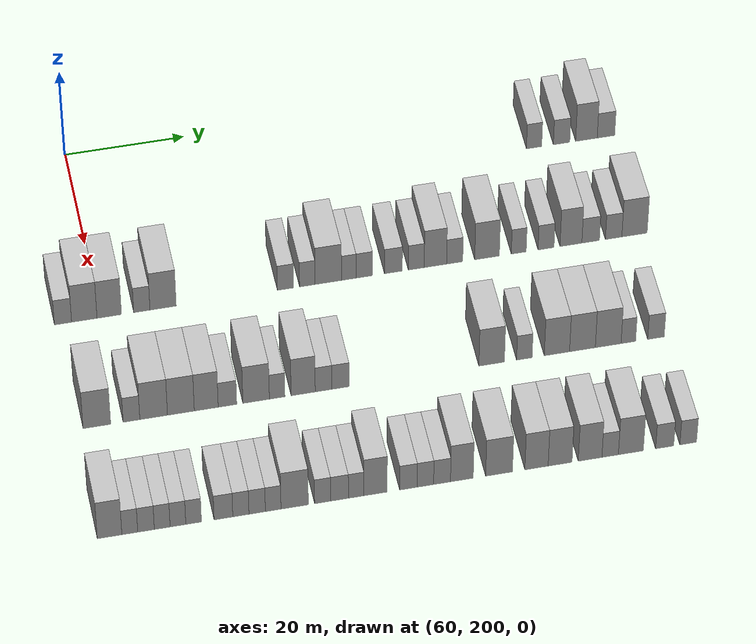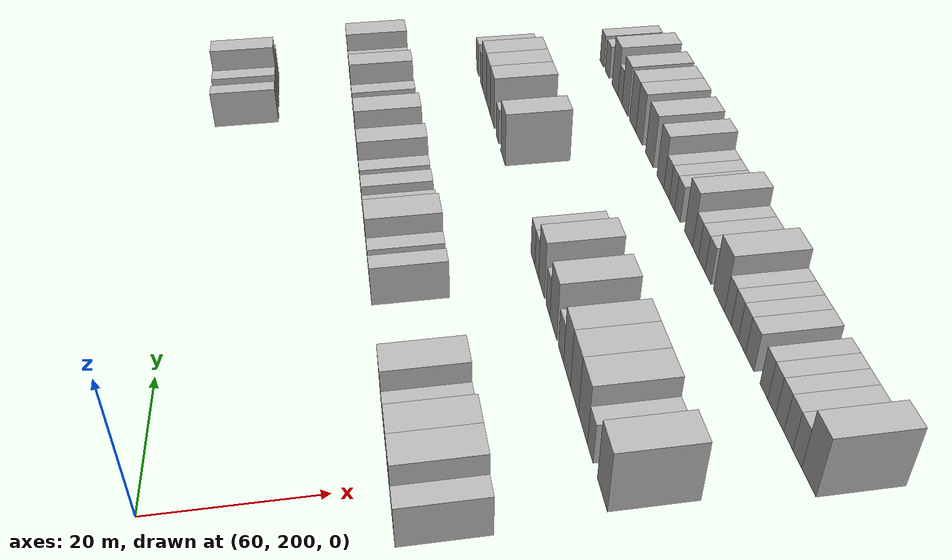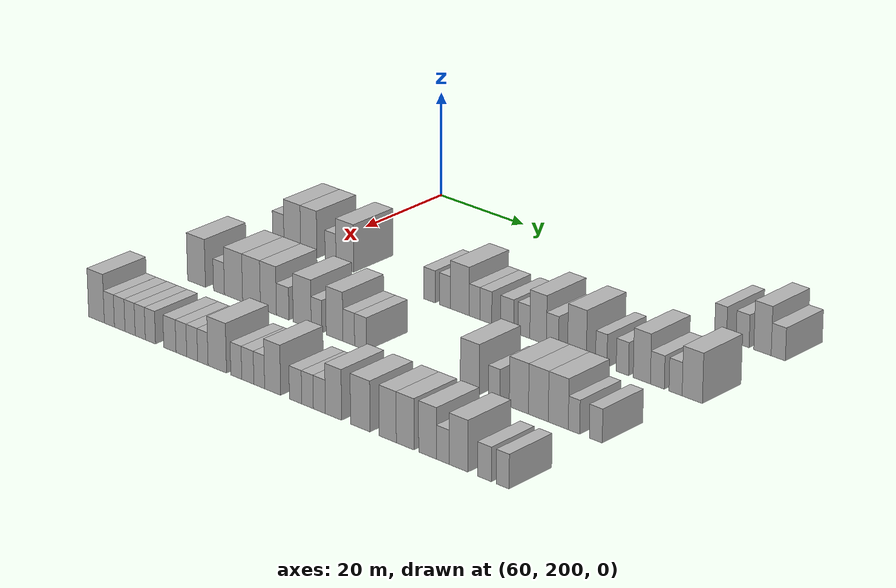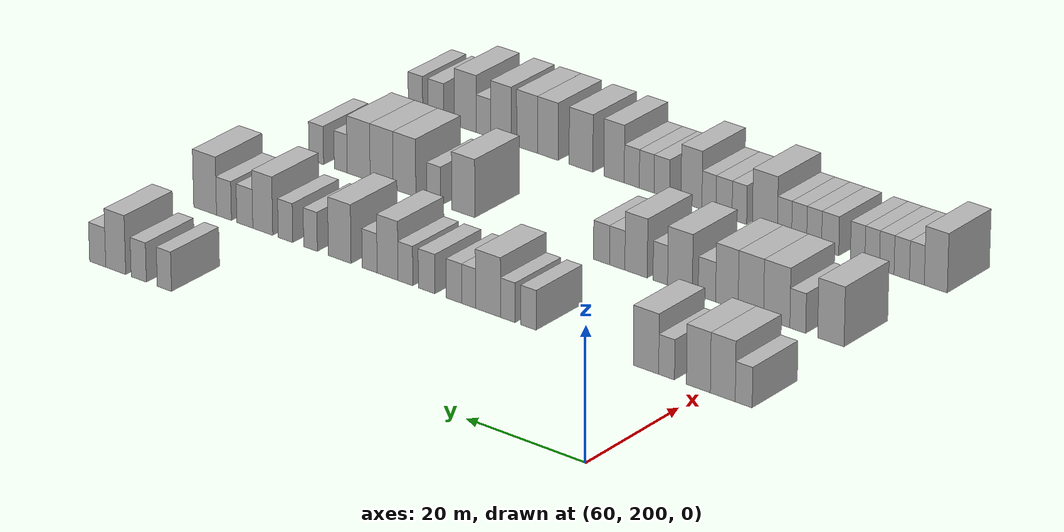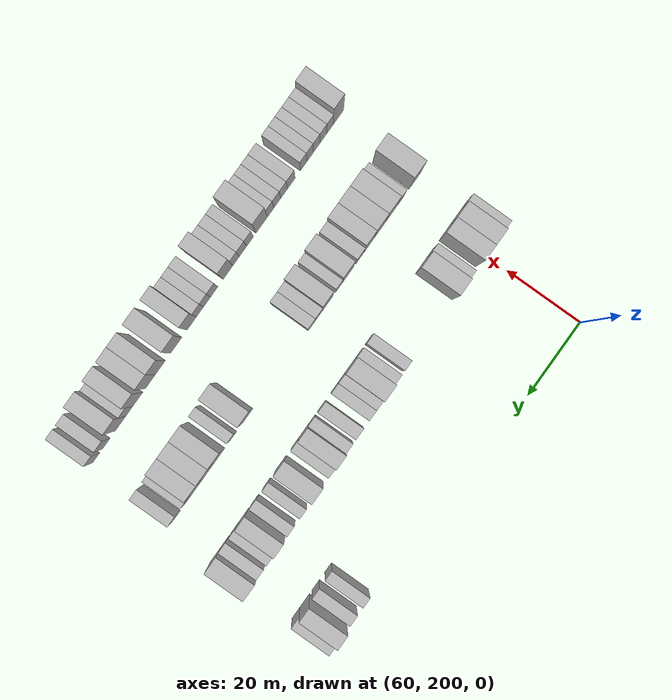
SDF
<sdf version="1.6">
 <world name="default">
  <model name="building_548">
   <static>1</static>
   <pose>69.0000 276.6926 0 0.000000 0.000000 0.000000</pose>
   <link name="link">
    <pose>0 0 3.00 0 0 0</pose>
    <collision name="collision"><geometry><box><size>10.0000 2.5990 6.0000</size></box></geometry></collision>
    <visual name="visual">
     <cast_shadows>0</cast_shadows>
     <geometry><box><size>10.0000 2.5990 6.0000</size></box></geometry>
     <material>
      <script>
       <uri>model://HANNAS_wall/materials/scripts</uri>
       <uri>model://HANNAS_wall/materials/textures</uri>
       <name>vrc/HANNAS_wall</name>
      </script>
     </material>
    </visual>
   </link>
  </model>
  <model name="building_549">
   <static>1</static>
   <pose>69.0000 281.3944 0 0.000000 0.000000 0.000000</pose>
   <link name="link">
    <pose>0 0 3.00 0 0 0</pose>
    <collision name="collision"><geometry><box><size>10.0000 2.8046 6.0000</size></box></geometry></collision>
    <visual name="visual">
     <cast_shadows>0</cast_shadows>
     <geometry><box><size>10.0000 2.8046 6.0000</size></box></geometry>
     <material>
      <script>
       <uri>model://HANNAS_wall/materials/scripts</uri>
       <uri>model://HANNAS_wall/materials/textures</uri>
       <name>vrc/HANNAS_wall</name>
      </script>
     </material>
    </visual>
   </link>
  </model>
  <model name="building_550">
   <static>1</static>
   <pose>69.0000 285.6413 0 0.000000 0.000000 0.000000</pose>
   <link name="link">
    <pose>0 0 4.50 0 0 0</pose>
    <collision name="collision"><geometry><box><size>10.0000 3.6891 9.0000</size></box></geometry></collision>
    <visual name="visual">
     <cast_shadows>0</cast_shadows>
     <geometry><box><size>10.0000 3.6891 9.0000</size></box></geometry>
     <material>
      <script>
       <uri>model://HANNAS_wall/materials/scripts</uri>
       <uri>model://HANNAS_wall/materials/textures</uri>
       <name>vrc/HANNAS_wall</name>
      </script>
     </material>
    </visual>
   </link>
  </model>
  <model name="building_551">
   <static>1</static>
   <pose>69.0000 288.9842 0 0.000000 0.000000 0.000000</pose>
   <link name="link">
    <pose>0 0 3.00 0 0 0</pose>
    <collision name="collision"><geometry><box><size>10.0000 2.9966 6.0000</size></box></geometry></collision>
    <visual name="visual">
     <cast_shadows>0</cast_shadows>
     <geometry><box><size>10.0000 2.9966 6.0000</size></box></geometry>
     <material>
      <script>
       <uri>model://HANNAS_wall/materials/scripts</uri>
       <uri>model://HANNAS_wall/materials/textures</uri>
       <name>vrc/HANNAS_wall</name>
      </script>
     </material>
    </visual>
   </link>
  </model>
  <model name="building_724">
   <static>1</static>
   <pose>91.0000 193.8318 0 0.000000 0.000000 0.000000</pose>
   <link name="link">
    <pose>0 0 3.00 0 0 0</pose>
    <collision name="collision"><geometry><box><size>10.0000 2.8111 6.0000</size></box></geometry></collision>
    <visual name="visual">
     <cast_shadows>0</cast_shadows>
     <geometry><box><size>10.0000 2.8111 6.0000</size></box></geometry>
     <material>
      <script>
       <uri>model://HANNAS_wall/materials/scripts</uri>
       <uri>model://HANNAS_wall/materials/textures</uri>
       <name>vrc/HANNAS_wall</name>
      </script>
     </material>
    </visual>
   </link>
  </model>
  <model name="building_725">
   <static>1</static>
   <pose>91.0000 197.3106 0 0.000000 0.000000 0.000000</pose>
   <link name="link">
    <pose>0 0 4.50 0 0 0</pose>
    <collision name="collision"><geometry><box><size>10.0000 4.1465 9.0000</size></box></geometry></collision>
    <visual name="visual">
     <cast_shadows>0</cast_shadows>
     <geometry><box><size>10.0000 4.1465 9.0000</size></box></geometry>
     <material>
      <script>
       <uri>model://HANNAS_wall/materials/scripts</uri>
       <uri>model://HANNAS_wall/materials/textures</uri>
       <name>vrc/HANNAS_wall</name>
      </script>
     </material>
    </visual>
   </link>
  </model>
  <model name="building_726">
   <static>1</static>
   <pose>91.0000 201.3864 0 0.000000 0.000000 0.000000</pose>
   <link name="link">
    <pose>0 0 4.50 0 0 0</pose>
    <collision name="collision"><geometry><box><size>10.0000 4.0050 9.0000</size></box></geometry></collision>
    <visual name="visual">
     <cast_shadows>0</cast_shadows>
     <geometry><box><size>10.0000 4.0050 9.0000</size></box></geometry>
     <material>
      <script>
       <uri>model://HANNAS_wall/materials/scripts</uri>
       <uri>model://HANNAS_wall/materials/textures</uri>
       <name>vrc/HANNAS_wall</name>
      </script>
     </material>
    </visual>
   </link>
  </model>
  <model name="building_727">
   <static>1</static>
   <pose>91.0000 206.7208 0 0.000000 0.000000 0.000000</pose>
   <link name="link">
    <pose>0 0 3.00 0 0 0</pose>
    <collision name="collision"><geometry><box><size>10.0000 2.6639 6.0000</size></box></geometry></collision>
    <visual name="visual">
     <cast_shadows>0</cast_shadows>
     <geometry><box><size>10.0000 2.6639 6.0000</size></box></geometry>
     <material>
      <script>
       <uri>model://HANNAS_wall/materials/scripts</uri>
       <uri>model://HANNAS_wall/materials/textures</uri>
       <name>vrc/HANNAS_wall</name>
      </script>
     </material>
    </visual>
   </link>
  </model>
  <model name="building_728">
   <static>1</static>
   <pose>91.0000 210.2033 0 0.000000 0.000000 0.000000</pose>
   <link name="link">
    <pose>0 0 4.50 0 0 0</pose>
    <collision name="collision"><geometry><box><size>10.0000 4.3011 9.0000</size></box></geometry></collision>
    <visual name="visual">
     <cast_shadows>0</cast_shadows>
     <geometry><box><size>10.0000 4.3011 9.0000</size></box></geometry>
     <material>
      <script>
       <uri>model://HANNAS_wall/materials/scripts</uri>
       <uri>model://HANNAS_wall/materials/textures</uri>
       <name>vrc/HANNAS_wall</name>
      </script>
     </material>
    </visual>
   </link>
  </model>
  <model name="building_729">
   <static>1</static>
   <pose>91.0000 230.3441 0 0.000000 0.000000 0.000000</pose>
   <link name="link">
    <pose>0 0 3.00 0 0 0</pose>
    <collision name="collision"><geometry><box><size>10.0000 2.6601 6.0000</size></box></geometry></collision>
    <visual name="visual">
     <cast_shadows>0</cast_shadows>
     <geometry><box><size>10.0000 2.6601 6.0000</size></box></geometry>
     <material>
      <script>
       <uri>model://HANNAS_wall/materials/scripts</uri>
       <uri>model://HANNAS_wall/materials/textures</uri>
       <name>vrc/HANNAS_wall</name>
      </script>
     </material>
    </visual>
   </link>
  </model>
  <model name="building_730">
   <static>1</static>
   <pose>91.0000 233.9556 0 0.000000 0.000000 0.000000</pose>
   <link name="link">
    <pose>0 0 3.00 0 0 0</pose>
    <collision name="collision"><geometry><box><size>10.0000 2.5629 6.0000</size></box></geometry></collision>
    <visual name="visual">
     <cast_shadows>0</cast_shadows>
     <geometry><box><size>10.0000 2.5629 6.0000</size></box></geometry>
     <material>
      <script>
       <uri>model://HANNAS_wall/materials/scripts</uri>
       <uri>model://HANNAS_wall/materials/textures</uri>
       <name>vrc/HANNAS_wall</name>
      </script>
     </material>
    </visual>
   </link>
  </model>
  <model name="building_731">
   <static>1</static>
   <pose>91.0000 237.4260 0 0.000000 0.000000 0.000000</pose>
   <link name="link">
    <pose>0 0 4.50 0 0 0</pose>
    <collision name="collision"><geometry><box><size>10.0000 4.3779 9.0000</size></box></geometry></collision>
    <visual name="visual">
     <cast_shadows>0</cast_shadows>
     <geometry><box><size>10.0000 4.3779 9.0000</size></box></geometry>
     <material>
      <script>
       <uri>model://HANNAS_wall/materials/scripts</uri>
       <uri>model://HANNAS_wall/materials/textures</uri>
       <name>vrc/HANNAS_wall</name>
      </script>
     </material>
    </visual>
   </link>
  </model>
  <model name="building_732">
   <static>1</static>
   <pose>91.0000 240.8261 0 0.000000 0.000000 0.000000</pose>
   <link name="link">
    <pose>0 0 3.00 0 0 0</pose>
    <collision name="collision"><geometry><box><size>10.0000 2.4224 6.0000</size></box></geometry></collision>
    <visual name="visual">
     <cast_shadows>0</cast_shadows>
     <geometry><box><size>10.0000 2.4224 6.0000</size></box></geometry>
     <material>
      <script>
       <uri>model://HANNAS_wall/materials/scripts</uri>
       <uri>model://HANNAS_wall/materials/textures</uri>
       <name>vrc/HANNAS_wall</name>
      </script>
     </material>
    </visual>
   </link>
  </model>
  <model name="building_733">
   <static>1</static>
   <pose>91.0000 243.3907 0 0.000000 0.000000 0.000000</pose>
   <link name="link">
    <pose>0 0 3.00 0 0 0</pose>
    <collision name="collision"><geometry><box><size>10.0000 2.7069 6.0000</size></box></geometry></collision>
    <visual name="visual">
     <cast_shadows>0</cast_shadows>
     <geometry><box><size>10.0000 2.7069 6.0000</size></box></geometry>
     <material>
      <script>
       <uri>model://HANNAS_wall/materials/scripts</uri>
       <uri>model://HANNAS_wall/materials/textures</uri>
       <name>vrc/HANNAS_wall</name>
      </script>
     </material>
    </visual>
   </link>
  </model>
  <model name="building_734">
   <static>1</static>
   <pose>91.0000 248.2250 0 0.000000 0.000000 0.000000</pose>
   <link name="link">
    <pose>0 0 3.00 0 0 0</pose>
    <collision name="collision"><geometry><box><size>10.0000 2.9616 6.0000</size></box></geometry></collision>
    <visual name="visual">
     <cast_shadows>0</cast_shadows>
     <geometry><box><size>10.0000 2.9616 6.0000</size></box></geometry>
     <material>
      <script>
       <uri>model://HANNAS_wall/materials/scripts</uri>
       <uri>model://HANNAS_wall/materials/textures</uri>
       <name>vrc/HANNAS_wall</name>
      </script>
     </material>
    </visual>
   </link>
  </model>
  <model name="building_735">
   <static>1</static>
   <pose>91.0000 252.0262 0 0.000000 0.000000 0.000000</pose>
   <link name="link">
    <pose>0 0 3.00 0 0 0</pose>
    <collision name="collision"><geometry><box><size>10.0000 2.6408 6.0000</size></box></geometry></collision>
    <visual name="visual">
     <cast_shadows>0</cast_shadows>
     <geometry><box><size>10.0000 2.6408 6.0000</size></box></geometry>
     <material>
      <script>
       <uri>model://HANNAS_wall/materials/scripts</uri>
       <uri>model://HANNAS_wall/materials/textures</uri>
       <name>vrc/HANNAS_wall</name>
      </script>
     </material>
    </visual>
   </link>
  </model>
  <model name="building_736">
   <static>1</static>
   <pose>91.0000 255.2136 0 0.000000 0.000000 0.000000</pose>
   <link name="link">
    <pose>0 0 4.50 0 0 0</pose>
    <collision name="collision"><geometry><box><size>10.0000 3.7342 9.0000</size></box></geometry></collision>
    <visual name="visual">
     <cast_shadows>0</cast_shadows>
     <geometry><box><size>10.0000 3.7342 9.0000</size></box></geometry>
     <material>
      <script>
       <uri>model://HANNAS_wall/materials/scripts</uri>
       <uri>model://HANNAS_wall/materials/textures</uri>
       <name>vrc/HANNAS_wall</name>
      </script>
     </material>
    </visual>
   </link>
  </model>
  <model name="building_737">
   <static>1</static>
   <pose>91.0000 258.4247 0 0.000000 0.000000 0.000000</pose>
   <link name="link">
    <pose>0 0 3.00 0 0 0</pose>
    <collision name="collision"><geometry><box><size>10.0000 2.6878 6.0000</size></box></geometry></collision>
    <visual name="visual">
     <cast_shadows>0</cast_shadows>
     <geometry><box><size>10.0000 2.6878 6.0000</size></box></geometry>
     <material>
      <script>
       <uri>model://HANNAS_wall/materials/scripts</uri>
       <uri>model://HANNAS_wall/materials/textures</uri>
       <name>vrc/HANNAS_wall</name>
      </script>
     </material>
    </visual>
   </link>
  </model>
  <model name="building_738">
   <static>1</static>
   <pose>91.0000 263.8253 0 0.000000 0.000000 0.000000</pose>
   <link name="link">
    <pose>0 0 4.50 0 0 0</pose>
    <collision name="collision"><geometry><box><size>10.0000 4.1136 9.0000</size></box></geometry></collision>
    <visual name="visual">
     <cast_shadows>0</cast_shadows>
     <geometry><box><size>10.0000 4.1136 9.0000</size></box></geometry>
     <material>
      <script>
       <uri>model://HANNAS_wall/materials/scripts</uri>
       <uri>model://HANNAS_wall/materials/textures</uri>
       <name>vrc/HANNAS_wall</name>
      </script>
     </material>
    </visual>
   </link>
  </model>
  <model name="building_739">
   <static>1</static>
   <pose>91.0000 269.1252 0 0.000000 0.000000 0.000000</pose>
   <link name="link">
    <pose>0 0 3.00 0 0 0</pose>
    <collision name="collision"><geometry><box><size>10.0000 2.4861 6.0000</size></box></geometry></collision>
    <visual name="visual">
     <cast_shadows>0</cast_shadows>
     <geometry><box><size>10.0000 2.4861 6.0000</size></box></geometry>
     <material>
      <script>
       <uri>model://HANNAS_wall/materials/scripts</uri>
       <uri>model://HANNAS_wall/materials/textures</uri>
       <name>vrc/HANNAS_wall</name>
      </script>
     </material>
    </visual>
   </link>
  </model>
  <model name="building_740">
   <static>1</static>
   <pose>91.0000 273.7017 0 0.000000 0.000000 0.000000</pose>
   <link name="link">
    <pose>0 0 3.00 0 0 0</pose>
    <collision name="collision"><geometry><box><size>10.0000 2.6669 6.0000</size></box></geometry></collision>
    <visual name="visual">
     <cast_shadows>0</cast_shadows>
     <geometry><box><size>10.0000 2.6669 6.0000</size></box></geometry>
     <material>
      <script>
       <uri>model://HANNAS_wall/materials/scripts</uri>
       <uri>model://HANNAS_wall/materials/textures</uri>
       <name>vrc/HANNAS_wall</name>
      </script>
     </material>
    </visual>
   </link>
  </model>
  <model name="building_741">
   <static>1</static>
   <pose>91.0000 277.8735 0 0.000000 0.000000 0.000000</pose>
   <link name="link">
    <pose>0 0 4.50 0 0 0</pose>
    <collision name="collision"><geometry><box><size>10.0000 3.6767 9.0000</size></box></geometry></collision>
    <visual name="visual">
     <cast_shadows>0</cast_shadows>
     <geometry><box><size>10.0000 3.6767 9.0000</size></box></geometry>
     <material>
      <script>
       <uri>model://HANNAS_wall/materials/scripts</uri>
       <uri>model://HANNAS_wall/materials/textures</uri>
       <name>vrc/HANNAS_wall</name>
      </script>
     </material>
    </visual>
   </link>
  </model>
  <model name="building_742">
   <static>1</static>
   <pose>91.0000 281.1867 0 0.000000 0.000000 0.000000</pose>
   <link name="link">
    <pose>0 0 3.00 0 0 0</pose>
    <collision name="collision"><geometry><box><size>10.0000 2.9497 6.0000</size></box></geometry></collision>
    <visual name="visual">
     <cast_shadows>0</cast_shadows>
     <geometry><box><size>10.0000 2.9497 6.0000</size></box></geometry>
     <material>
      <script>
       <uri>model://HANNAS_wall/materials/scripts</uri>
       <uri>model://HANNAS_wall/materials/textures</uri>
       <name>vrc/HANNAS_wall</name>
      </script>
     </material>
    </visual>
   </link>
  </model>
  <model name="building_743">
   <static>1</static>
   <pose>91.0000 285.0460 0 0.000000 0.000000 0.000000</pose>
   <link name="link">
    <pose>0 0 3.00 0 0 0</pose>
    <collision name="collision"><geometry><box><size>10.0000 2.7689 6.0000</size></box></geometry></collision>
    <visual name="visual">
     <cast_shadows>0</cast_shadows>
     <geometry><box><size>10.0000 2.7689 6.0000</size></box></geometry>
     <material>
      <script>
       <uri>model://HANNAS_wall/materials/scripts</uri>
       <uri>model://HANNAS_wall/materials/textures</uri>
       <name>vrc/HANNAS_wall</name>
      </script>
     </material>
    </visual>
   </link>
  </model>
  <model name="building_744">
   <static>1</static>
   <pose>91.0000 288.5570 0 0.000000 0.000000 0.000000</pose>
   <link name="link">
    <pose>0 0 4.50 0 0 0</pose>
    <collision name="collision"><geometry><box><size>10.0000 4.2532 9.0000</size></box></geometry></collision>
    <visual name="visual">
     <cast_shadows>0</cast_shadows>
     <geometry><box><size>10.0000 4.2532 9.0000</size></box></geometry>
     <material>
      <script>
       <uri>model://HANNAS_wall/materials/scripts</uri>
       <uri>model://HANNAS_wall/materials/textures</uri>
       <name>vrc/HANNAS_wall</name>
      </script>
     </material>
    </visual>
   </link>
  </model>
  <model name="building_905">
   <static>1</static>
   <pose>113.0000 195.7240 0 0.000000 0.000000 0.000000</pose>
   <link name="link">
    <pose>0 0 4.50 0 0 0</pose>
    <collision name="collision"><geometry><box><size>10.0000 4.4310 9.0000</size></box></geometry></collision>
    <visual name="visual">
     <cast_shadows>0</cast_shadows>
     <geometry><box><size>10.0000 4.4310 9.0000</size></box></geometry>
     <material>
      <script>
       <uri>model://HANNAS_wall/materials/scripts</uri>
       <uri>model://HANNAS_wall/materials/textures</uri>
       <name>vrc/HANNAS_wall</name>
      </script>
     </material>
    </visual>
   </link>
  </model>
  <model name="building_906">
   <static>1</static>
   <pose>113.0000 201.2776 0 0.000000 0.000000 0.000000</pose>
   <link name="link">
    <pose>0 0 3.00 0 0 0</pose>
    <collision name="collision"><geometry><box><size>10.0000 2.6762 6.0000</size></box></geometry></collision>
    <visual name="visual">
     <cast_shadows>0</cast_shadows>
     <geometry><box><size>10.0000 2.6762 6.0000</size></box></geometry>
     <material>
      <script>
       <uri>model://HANNAS_wall/materials/scripts</uri>
       <uri>model://HANNAS_wall/materials/textures</uri>
       <name>vrc/HANNAS_wall</name>
      </script>
     </material>
    </visual>
   </link>
  </model>
  <model name="building_907">
   <static>1</static>
   <pose>113.0000 204.8418 0 0.000000 0.000000 0.000000</pose>
   <link name="link">
    <pose>0 0 4.50 0 0 0</pose>
    <collision name="collision"><geometry><box><size>10.0000 4.4522 9.0000</size></box></geometry></collision>
    <visual name="visual">
     <cast_shadows>0</cast_shadows>
     <geometry><box><size>10.0000 4.4522 9.0000</size></box></geometry>
     <material>
      <script>
       <uri>model://HANNAS_wall/materials/scripts</uri>
       <uri>model://HANNAS_wall/materials/textures</uri>
       <name>vrc/HANNAS_wall</name>
      </script>
     </material>
    </visual>
   </link>
  </model>
  <model name="building_908">
   <static>1</static>
   <pose>113.0000 209.2295 0 0.000000 0.000000 0.000000</pose>
   <link name="link">
    <pose>0 0 4.50 0 0 0</pose>
    <collision name="collision"><geometry><box><size>10.0000 4.3233 9.0000</size></box></geometry></collision>
    <visual name="visual">
     <cast_shadows>0</cast_shadows>
     <geometry><box><size>10.0000 4.3233 9.0000</size></box></geometry>
     <material>
      <script>
       <uri>model://HANNAS_wall/materials/scripts</uri>
       <uri>model://HANNAS_wall/materials/textures</uri>
       <name>vrc/HANNAS_wall</name>
      </script>
     </material>
    </visual>
   </link>
  </model>
  <model name="building_909">
   <static>1</static>
   <pose>113.0000 213.3185 0 0.000000 0.000000 0.000000</pose>
   <link name="link">
    <pose>0 0 4.50 0 0 0</pose>
    <collision name="collision"><geometry><box><size>10.0000 3.8548 9.0000</size></box></geometry></collision>
    <visual name="visual">
     <cast_shadows>0</cast_shadows>
     <geometry><box><size>10.0000 3.8548 9.0000</size></box></geometry>
     <material>
      <script>
       <uri>model://HANNAS_wall/materials/scripts</uri>
       <uri>model://HANNAS_wall/materials/textures</uri>
       <name>vrc/HANNAS_wall</name>
      </script>
     </material>
    </visual>
   </link>
  </model>
  <model name="building_910">
   <static>1</static>
   <pose>113.0000 216.7417 0 0.000000 0.000000 0.000000</pose>
   <link name="link">
    <pose>0 0 3.00 0 0 0</pose>
    <collision name="collision"><geometry><box><size>10.0000 2.9916 6.0000</size></box></geometry></collision>
    <visual name="visual">
     <cast_shadows>0</cast_shadows>
     <geometry><box><size>10.0000 2.9916 6.0000</size></box></geometry>
     <material>
      <script>
       <uri>model://HANNAS_wall/materials/scripts</uri>
       <uri>model://HANNAS_wall/materials/textures</uri>
       <name>vrc/HANNAS_wall</name>
      </script>
     </material>
    </visual>
   </link>
  </model>
  <model name="building_911">
   <static>1</static>
   <pose>113.0000 221.3790 0 0.000000 0.000000 0.000000</pose>
   <link name="link">
    <pose>0 0 4.50 0 0 0</pose>
    <collision name="collision"><geometry><box><size>10.0000 4.2830 9.0000</size></box></geometry></collision>
    <visual name="visual">
     <cast_shadows>0</cast_shadows>
     <geometry><box><size>10.0000 4.2830 9.0000</size></box></geometry>
     <material>
      <script>
       <uri>model://HANNAS_wall/materials/scripts</uri>
       <uri>model://HANNAS_wall/materials/textures</uri>
       <name>vrc/HANNAS_wall</name>
      </script>
     </material>
    </visual>
   </link>
  </model>
  <model name="building_912">
   <static>1</static>
   <pose>113.0000 224.7806 0 0.000000 0.000000 0.000000</pose>
   <link name="link">
    <pose>0 0 3.00 0 0 0</pose>
    <collision name="collision"><geometry><box><size>10.0000 2.5202 6.0000</size></box></geometry></collision>
    <visual name="visual">
     <cast_shadows>0</cast_shadows>
     <geometry><box><size>10.0000 2.5202 6.0000</size></box></geometry>
     <material>
      <script>
       <uri>model://HANNAS_wall/materials/scripts</uri>
       <uri>model://HANNAS_wall/materials/textures</uri>
       <name>vrc/HANNAS_wall</name>
      </script>
     </material>
    </visual>
   </link>
  </model>
  <model name="building_913">
   <static>1</static>
   <pose>113.0000 228.9974 0 0.000000 0.000000 0.000000</pose>
   <link name="link">
    <pose>0 0 4.50 0 0 0</pose>
    <collision name="collision"><geometry><box><size>10.0000 3.9135 9.0000</size></box></geometry></collision>
    <visual name="visual">
     <cast_shadows>0</cast_shadows>
     <geometry><box><size>10.0000 3.9135 9.0000</size></box></geometry>
     <material>
      <script>
       <uri>model://HANNAS_wall/materials/scripts</uri>
       <uri>model://HANNAS_wall/materials/textures</uri>
       <name>vrc/HANNAS_wall</name>
      </script>
     </material>
    </visual>
   </link>
  </model>
  <model name="building_914">
   <static>1</static>
   <pose>113.0000 232.3144 0 0.000000 0.000000 0.000000</pose>
   <link name="link">
    <pose>0 0 3.00 0 0 0</pose>
    <collision name="collision"><geometry><box><size>10.0000 2.7204 6.0000</size></box></geometry></collision>
    <visual name="visual">
     <cast_shadows>0</cast_shadows>
     <geometry><box><size>10.0000 2.7204 6.0000</size></box></geometry>
     <material>
      <script>
       <uri>model://HANNAS_wall/materials/scripts</uri>
       <uri>model://HANNAS_wall/materials/textures</uri>
       <name>vrc/HANNAS_wall</name>
      </script>
     </material>
    </visual>
   </link>
  </model>
  <model name="building_915">
   <static>1</static>
   <pose>113.0000 235.0636 0 0.000000 0.000000 0.000000</pose>
   <link name="link">
    <pose>0 0 3.00 0 0 0</pose>
    <collision name="collision"><geometry><box><size>10.0000 2.7780 6.0000</size></box></geometry></collision>
    <visual name="visual">
     <cast_shadows>0</cast_shadows>
     <geometry><box><size>10.0000 2.7780 6.0000</size></box></geometry>
     <material>
      <script>
       <uri>model://HANNAS_wall/materials/scripts</uri>
       <uri>model://HANNAS_wall/materials/textures</uri>
       <name>vrc/HANNAS_wall</name>
      </script>
     </material>
    </visual>
   </link>
  </model>
  <model name="building_916">
   <static>1</static>
   <pose>113.0000 259.7278 0 0.000000 0.000000 0.000000</pose>
   <link name="link">
    <pose>0 0 4.50 0 0 0</pose>
    <collision name="collision"><geometry><box><size>10.0000 4.1835 9.0000</size></box></geometry></collision>
    <visual name="visual">
     <cast_shadows>0</cast_shadows>
     <geometry><box><size>10.0000 4.1835 9.0000</size></box></geometry>
     <material>
      <script>
       <uri>model://HANNAS_wall/materials/scripts</uri>
       <uri>model://HANNAS_wall/materials/textures</uri>
       <name>vrc/HANNAS_wall</name>
      </script>
     </material>
    </visual>
   </link>
  </model>
  <model name="building_917">
   <static>1</static>
   <pose>113.0000 265.0925 0 0.000000 0.000000 0.000000</pose>
   <link name="link">
    <pose>0 0 3.00 0 0 0</pose>
    <collision name="collision"><geometry><box><size>10.0000 2.5460 6.0000</size></box></geometry></collision>
    <visual name="visual">
     <cast_shadows>0</cast_shadows>
     <geometry><box><size>10.0000 2.5460 6.0000</size></box></geometry>
     <material>
      <script>
       <uri>model://HANNAS_wall/materials/scripts</uri>
       <uri>model://HANNAS_wall/materials/textures</uri>
       <name>vrc/HANNAS_wall</name>
      </script>
     </material>
    </visual>
   </link>
  </model>
  <model name="building_918">
   <static>1</static>
   <pose>113.0000 270.4456 0 0.000000 0.000000 0.000000</pose>
   <link name="link">
    <pose>0 0 4.50 0 0 0</pose>
    <collision name="collision"><geometry><box><size>10.0000 4.1601 9.0000</size></box></geometry></collision>
    <visual name="visual">
     <cast_shadows>0</cast_shadows>
     <geometry><box><size>10.0000 4.1601 9.0000</size></box></geometry>
     <material>
      <script>
       <uri>model://HANNAS_wall/materials/scripts</uri>
       <uri>model://HANNAS_wall/materials/textures</uri>
       <name>vrc/HANNAS_wall</name>
      </script>
     </material>
    </visual>
   </link>
  </model>
  <model name="building_919">
   <static>1</static>
   <pose>113.0000 274.6491 0 0.000000 0.000000 0.000000</pose>
   <link name="link">
    <pose>0 0 4.50 0 0 0</pose>
    <collision name="collision"><geometry><box><size>10.0000 4.2469 9.0000</size></box></geometry></collision>
    <visual name="visual">
     <cast_shadows>0</cast_shadows>
     <geometry><box><size>10.0000 4.2469 9.0000</size></box></geometry>
     <material>
      <script>
       <uri>model://HANNAS_wall/materials/scripts</uri>
       <uri>model://HANNAS_wall/materials/textures</uri>
       <name>vrc/HANNAS_wall</name>
      </script>
     </material>
    </visual>
   </link>
  </model>
  <model name="building_920">
   <static>1</static>
   <pose>113.0000 278.8948 0 0.000000 0.000000 0.000000</pose>
   <link name="link">
    <pose>0 0 4.50 0 0 0</pose>
    <collision name="collision"><geometry><box><size>10.0000 4.2445 9.0000</size></box></geometry></collision>
    <visual name="visual">
     <cast_shadows>0</cast_shadows>
     <geometry><box><size>10.0000 4.2445 9.0000</size></box></geometry>
     <material>
      <script>
       <uri>model://HANNAS_wall/materials/scripts</uri>
       <uri>model://HANNAS_wall/materials/textures</uri>
       <name>vrc/HANNAS_wall</name>
      </script>
     </material>
    </visual>
   </link>
  </model>
  <model name="building_921">
   <static>1</static>
   <pose>113.0000 282.2194 0 0.000000 0.000000 0.000000</pose>
   <link name="link">
    <pose>0 0 3.00 0 0 0</pose>
    <collision name="collision"><geometry><box><size>10.0000 2.4048 6.0000</size></box></geometry></collision>
    <visual name="visual">
     <cast_shadows>0</cast_shadows>
     <geometry><box><size>10.0000 2.4048 6.0000</size></box></geometry>
     <material>
      <script>
       <uri>model://HANNAS_wall/materials/scripts</uri>
       <uri>model://HANNAS_wall/materials/textures</uri>
       <name>vrc/HANNAS_wall</name>
      </script>
     </material>
    </visual>
   </link>
  </model>
  <model name="building_922">
   <static>1</static>
   <pose>113.0000 286.7843 0 0.000000 0.000000 0.000000</pose>
   <link name="link">
    <pose>0 0 3.00 0 0 0</pose>
    <collision name="collision"><geometry><box><size>10.0000 2.7249 6.0000</size></box></geometry></collision>
    <visual name="visual">
     <cast_shadows>0</cast_shadows>
     <geometry><box><size>10.0000 2.7249 6.0000</size></box></geometry>
     <material>
      <script>
       <uri>model://HANNAS_wall/materials/scripts</uri>
       <uri>model://HANNAS_wall/materials/textures</uri>
       <name>vrc/HANNAS_wall</name>
      </script>
     </material>
    </visual>
   </link>
  </model>
  <model name="building_1080">
   <static>1</static>
   <pose>135.0000 194.0825 0 0.000000 0.000000 0.000000</pose>
   <link name="link">
    <pose>0 0 4.50 0 0 0</pose>
    <collision name="collision"><geometry><box><size>10.0000 3.8730 9.0000</size></box></geometry></collision>
    <visual name="visual">
     <cast_shadows>0</cast_shadows>
     <geometry><box><size>10.0000 3.8730 9.0000</size></box></geometry>
     <material>
      <script>
       <uri>model://HANNAS_wall/materials/scripts</uri>
       <uri>model://HANNAS_wall/materials/textures</uri>
       <name>vrc/HANNAS_wall</name>
      </script>
     </material>
    </visual>
   </link>
  </model>
  <model name="building_1081">
   <static>1</static>
   <pose>135.0000 197.2699 0 0.000000 0.000000 0.000000</pose>
   <link name="link">
    <pose>0 0 3.00 0 0 0</pose>
    <collision name="collision"><geometry><box><size>10.0000 2.5018 6.0000</size></box></geometry></collision>
    <visual name="visual">
     <cast_shadows>0</cast_shadows>
     <geometry><box><size>10.0000 2.5018 6.0000</size></box></geometry>
     <material>
      <script>
       <uri>model://HANNAS_wall/materials/scripts</uri>
       <uri>model://HANNAS_wall/materials/textures</uri>
       <name>vrc/HANNAS_wall</name>
      </script>
     </material>
    </visual>
   </link>
  </model>
  <model name="building_1082">
   <static>1</static>
   <pose>135.0000 199.8292 0 0.000000 0.000000 0.000000</pose>
   <link name="link">
    <pose>0 0 3.00 0 0 0</pose>
    <collision name="collision"><geometry><box><size>10.0000 2.6167 6.0000</size></box></geometry></collision>
    <visual name="visual">
     <cast_shadows>0</cast_shadows>
     <geometry><box><size>10.0000 2.6167 6.0000</size></box></geometry>
     <material>
      <script>
       <uri>model://HANNAS_wall/materials/scripts</uri>
       <uri>model://HANNAS_wall/materials/textures</uri>
       <name>vrc/HANNAS_wall</name>
      </script>
     </material>
    </visual>
   </link>
  </model>
  <model name="building_1083">
   <static>1</static>
   <pose>135.0000 202.3813 0 0.000000 0.000000 0.000000</pose>
   <link name="link">
    <pose>0 0 3.00 0 0 0</pose>
    <collision name="collision"><geometry><box><size>10.0000 2.4876 6.0000</size></box></geometry></collision>
    <visual name="visual">
     <cast_shadows>0</cast_shadows>
     <geometry><box><size>10.0000 2.4876 6.0000</size></box></geometry>
     <material>
      <script>
       <uri>model://HANNAS_wall/materials/scripts</uri>
       <uri>model://HANNAS_wall/materials/textures</uri>
       <name>vrc/HANNAS_wall</name>
      </script>
     </material>
    </visual>
   </link>
  </model>
  <model name="building_1084">
   <static>1</static>
   <pose>135.0000 204.8664 0 0.000000 0.000000 0.000000</pose>
   <link name="link">
    <pose>0 0 3.00 0 0 0</pose>
    <collision name="collision"><geometry><box><size>10.0000 2.4827 6.0000</size></box></geometry></collision>
    <visual name="visual">
     <cast_shadows>0</cast_shadows>
     <geometry><box><size>10.0000 2.4827 6.0000</size></box></geometry>
     <material>
      <script>
       <uri>model://HANNAS_wall/materials/scripts</uri>
       <uri>model://HANNAS_wall/materials/textures</uri>
       <name>vrc/HANNAS_wall</name>
      </script>
     </material>
    </visual>
   </link>
  </model>
  <model name="building_1085">
   <static>1</static>
   <pose>135.0000 207.3457 0 0.000000 0.000000 0.000000</pose>
   <link name="link">
    <pose>0 0 3.00 0 0 0</pose>
    <collision name="collision"><geometry><box><size>10.0000 2.4757 6.0000</size></box></geometry></collision>
    <visual name="visual">
     <cast_shadows>0</cast_shadows>
     <geometry><box><size>10.0000 2.4757 6.0000</size></box></geometry>
     <material>
      <script>
       <uri>model://HANNAS_wall/materials/scripts</uri>
       <uri>model://HANNAS_wall/materials/textures</uri>
       <name>vrc/HANNAS_wall</name>
      </script>
     </material>
    </visual>
   </link>
  </model>
  <model name="building_1086">
   <static>1</static>
   <pose>135.0000 212.0631 0 0.000000 0.000000 0.000000</pose>
   <link name="link">
    <pose>0 0 3.00 0 0 0</pose>
    <collision name="collision"><geometry><box><size>10.0000 2.9591 6.0000</size></box></geometry></collision>
    <visual name="visual">
     <cast_shadows>0</cast_shadows>
     <geometry><box><size>10.0000 2.9591 6.0000</size></box></geometry>
     <material>
      <script>
       <uri>model://HANNAS_wall/materials/scripts</uri>
       <uri>model://HANNAS_wall/materials/textures</uri>
       <name>vrc/HANNAS_wall</name>
      </script>
     </material>
    </visual>
   </link>
  </model>
  <model name="building_1087">
   <static>1</static>
   <pose>135.0000 214.8261 0 0.000000 0.000000 0.000000</pose>
   <link name="link">
    <pose>0 0 3.00 0 0 0</pose>
    <collision name="collision"><geometry><box><size>10.0000 2.5669 6.0000</size></box></geometry></collision>
    <visual name="visual">
     <cast_shadows>0</cast_shadows>
     <geometry><box><size>10.0000 2.5669 6.0000</size></box></geometry>
     <material>
      <script>
       <uri>model://HANNAS_wall/materials/scripts</uri>
       <uri>model://HANNAS_wall/materials/textures</uri>
       <name>vrc/HANNAS_wall</name>
      </script>
     </material>
    </visual>
   </link>
  </model>
  <model name="building_1088">
   <static>1</static>
   <pose>135.0000 217.4122 0 0.000000 0.000000 0.000000</pose>
   <link name="link">
    <pose>0 0 3.00 0 0 0</pose>
    <collision name="collision"><geometry><box><size>10.0000 2.6052 6.0000</size></box></geometry></collision>
    <visual name="visual">
     <cast_shadows>0</cast_shadows>
     <geometry><box><size>10.0000 2.6052 6.0000</size></box></geometry>
     <material>
      <script>
       <uri>model://HANNAS_wall/materials/scripts</uri>
       <uri>model://HANNAS_wall/materials/textures</uri>
       <name>vrc/HANNAS_wall</name>
      </script>
     </material>
    </visual>
   </link>
  </model>
  <model name="building_1089">
   <static>1</static>
   <pose>135.0000 219.9540 0 0.000000 0.000000 0.000000</pose>
   <link name="link">
    <pose>0 0 3.00 0 0 0</pose>
    <collision name="collision"><geometry><box><size>10.0000 2.4785 6.0000</size></box></geometry></collision>
    <visual name="visual">
     <cast_shadows>0</cast_shadows>
     <geometry><box><size>10.0000 2.4785 6.0000</size></box></geometry>
     <material>
      <script>
       <uri>model://HANNAS_wall/materials/scripts</uri>
       <uri>model://HANNAS_wall/materials/textures</uri>
       <name>vrc/HANNAS_wall</name>
      </script>
     </material>
    </visual>
   </link>
  </model>
  <model name="building_1090">
   <static>1</static>
   <pose>135.0000 223.3680 0 0.000000 0.000000 0.000000</pose>
   <link name="link">
    <pose>0 0 4.50 0 0 0</pose>
    <collision name="collision"><geometry><box><size>10.0000 4.3494 9.0000</size></box></geometry></collision>
    <visual name="visual">
     <cast_shadows>0</cast_shadows>
     <geometry><box><size>10.0000 4.3494 9.0000</size></box></geometry>
     <material>
      <script>
       <uri>model://HANNAS_wall/materials/scripts</uri>
       <uri>model://HANNAS_wall/materials/textures</uri>
       <name>vrc/HANNAS_wall</name>
      </script>
     </material>
    </visual>
   </link>
  </model>
  <model name="building_1091">
   <static>1</static>
   <pose>135.0000 227.8247 0 0.000000 0.000000 0.000000</pose>
   <link name="link">
    <pose>0 0 3.00 0 0 0</pose>
    <collision name="collision"><geometry><box><size>10.0000 2.5641 6.0000</size></box></geometry></collision>
    <visual name="visual">
     <cast_shadows>0</cast_shadows>
     <geometry><box><size>10.0000 2.5641 6.0000</size></box></geometry>
     <material>
      <script>
       <uri>model://HANNAS_wall/materials/scripts</uri>
       <uri>model://HANNAS_wall/materials/textures</uri>
       <name>vrc/HANNAS_wall</name>
      </script>
     </material>
    </visual>
   </link>
  </model>
  <model name="building_1092">
   <static>1</static>
   <pose>135.0000 230.5158 0 0.000000 0.000000 0.000000</pose>
   <link name="link">
    <pose>0 0 3.00 0 0 0</pose>
    <collision name="collision"><geometry><box><size>10.0000 2.8180 6.0000</size></box></geometry></collision>
    <visual name="visual">
     <cast_shadows>0</cast_shadows>
     <geometry><box><size>10.0000 2.8180 6.0000</size></box></geometry>
     <material>
      <script>
       <uri>model://HANNAS_wall/materials/scripts</uri>
       <uri>model://HANNAS_wall/materials/textures</uri>
       <name>vrc/HANNAS_wall</name>
      </script>
     </material>
    </visual>
   </link>
  </model>
  <model name="building_1093">
   <static>1</static>
   <pose>135.0000 233.1677 0 0.000000 0.000000 0.000000</pose>
   <link name="link">
    <pose>0 0 3.00 0 0 0</pose>
    <collision name="collision"><geometry><box><size>10.0000 2.4857 6.0000</size></box></geometry></collision>
    <visual name="visual">
     <cast_shadows>0</cast_shadows>
     <geometry><box><size>10.0000 2.4857 6.0000</size></box></geometry>
     <material>
      <script>
       <uri>model://HANNAS_wall/materials/scripts</uri>
       <uri>model://HANNAS_wall/materials/textures</uri>
       <name>vrc/HANNAS_wall</name>
      </script>
     </material>
    </visual>
   </link>
  </model>
  <model name="building_1094">
   <static>1</static>
   <pose>135.0000 236.2592 0 0.000000 0.000000 0.000000</pose>
   <link name="link">
    <pose>0 0 4.50 0 0 0</pose>
    <collision name="collision"><geometry><box><size>10.0000 3.6973 9.0000</size></box></geometry></collision>
    <visual name="visual">
     <cast_shadows>0</cast_shadows>
     <geometry><box><size>10.0000 3.6973 9.0000</size></box></geometry>
     <material>
      <script>
       <uri>model://HANNAS_wall/materials/scripts</uri>
       <uri>model://HANNAS_wall/materials/textures</uri>
       <name>vrc/HANNAS_wall</name>
      </script>
     </material>
    </visual>
   </link>
  </model>
  <model name="building_1095">
   <static>1</static>
   <pose>135.0000 241.5089 0 0.000000 0.000000 0.000000</pose>
   <link name="link">
    <pose>0 0 3.00 0 0 0</pose>
    <collision name="collision"><geometry><box><size>10.0000 2.8021 6.0000</size></box></geometry></collision>
    <visual name="visual">
     <cast_shadows>0</cast_shadows>
     <geometry><box><size>10.0000 2.8021 6.0000</size></box></geometry>
     <material>
      <script>
       <uri>model://HANNAS_wall/materials/scripts</uri>
       <uri>model://HANNAS_wall/materials/textures</uri>
       <name>vrc/HANNAS_wall</name>
      </script>
     </material>
    </visual>
   </link>
  </model>
  <model name="building_1096">
   <static>1</static>
   <pose>135.0000 244.2298 0 0.000000 0.000000 0.000000</pose>
   <link name="link">
    <pose>0 0 3.00 0 0 0</pose>
    <collision name="collision"><geometry><box><size>10.0000 2.6397 6.0000</size></box></geometry></collision>
    <visual name="visual">
     <cast_shadows>0</cast_shadows>
     <geometry><box><size>10.0000 2.6397 6.0000</size></box></geometry>
     <material>
      <script>
       <uri>model://HANNAS_wall/materials/scripts</uri>
       <uri>model://HANNAS_wall/materials/textures</uri>
       <name>vrc/HANNAS_wall</name>
      </script>
     </material>
    </visual>
   </link>
  </model>
  <model name="building_1097">
   <static>1</static>
   <pose>135.0000 246.9009 0 0.000000 0.000000 0.000000</pose>
   <link name="link">
    <pose>0 0 3.00 0 0 0</pose>
    <collision name="collision"><geometry><box><size>10.0000 2.7025 6.0000</size></box></geometry></collision>
    <visual name="visual">
     <cast_shadows>0</cast_shadows>
     <geometry><box><size>10.0000 2.7025 6.0000</size></box></geometry>
     <material>
      <script>
       <uri>model://HANNAS_wall/materials/scripts</uri>
       <uri>model://HANNAS_wall/materials/textures</uri>
       <name>vrc/HANNAS_wall</name>
      </script>
     </material>
    </visual>
   </link>
  </model>
  <model name="building_1098">
   <static>1</static>
   <pose>135.0000 250.0747 0 0.000000 0.000000 0.000000</pose>
   <link name="link">
    <pose>0 0 4.50 0 0 0</pose>
    <collision name="collision"><geometry><box><size>10.0000 3.6450 9.0000</size></box></geometry></collision>
    <visual name="visual">
     <cast_shadows>0</cast_shadows>
     <geometry><box><size>10.0000 3.6450 9.0000</size></box></geometry>
     <material>
      <script>
       <uri>model://HANNAS_wall/materials/scripts</uri>
       <uri>model://HANNAS_wall/materials/textures</uri>
       <name>vrc/HANNAS_wall</name>
      </script>
     </material>
    </visual>
   </link>
  </model>
  <model name="building_1099">
   <static>1</static>
   <pose>135.0000 256.0519 0 0.000000 0.000000 0.000000</pose>
   <link name="link">
    <pose>0 0 4.50 0 0 0</pose>
    <collision name="collision"><geometry><box><size>10.0000 4.3094 9.0000</size></box></geometry></collision>
    <visual name="visual">
     <cast_shadows>0</cast_shadows>
     <geometry><box><size>10.0000 4.3094 9.0000</size></box></geometry>
     <material>
      <script>
       <uri>model://HANNAS_wall/materials/scripts</uri>
       <uri>model://HANNAS_wall/materials/textures</uri>
       <name>vrc/HANNAS_wall</name>
      </script>
     </material>
    </visual>
   </link>
  </model>
  <model name="building_1100">
   <static>1</static>
   <pose>135.0000 262.0826 0 0.000000 0.000000 0.000000</pose>
   <link name="link">
    <pose>0 0 4.50 0 0 0</pose>
    <collision name="collision"><geometry><box><size>10.0000 3.7521 9.0000</size></box></geometry></collision>
    <visual name="visual">
     <cast_shadows>0</cast_shadows>
     <geometry><box><size>10.0000 3.7521 9.0000</size></box></geometry>
     <material>
      <script>
       <uri>model://HANNAS_wall/materials/scripts</uri>
       <uri>model://HANNAS_wall/materials/textures</uri>
       <name>vrc/HANNAS_wall</name>
      </script>
     </material>
    </visual>
   </link>
  </model>
  <model name="building_1101">
   <static>1</static>
   <pose>135.0000 265.8866 0 0.000000 0.000000 0.000000</pose>
   <link name="link">
    <pose>0 0 4.50 0 0 0</pose>
    <collision name="collision"><geometry><box><size>10.0000 3.8558 9.0000</size></box></geometry></collision>
    <visual name="visual">
     <cast_shadows>0</cast_shadows>
     <geometry><box><size>10.0000 3.8558 9.0000</size></box></geometry>
     <material>
      <script>
       <uri>model://HANNAS_wall/materials/scripts</uri>
       <uri>model://HANNAS_wall/materials/textures</uri>
       <name>vrc/HANNAS_wall</name>
      </script>
     </material>
    </visual>
   </link>
  </model>
  <model name="building_1102">
   <static>1</static>
   <pose>135.0000 270.7276 0 0.000000 0.000000 0.000000</pose>
   <link name="link">
    <pose>0 0 4.50 0 0 0</pose>
    <collision name="collision"><geometry><box><size>10.0000 3.8262 9.0000</size></box></geometry></collision>
    <visual name="visual">
     <cast_shadows>0</cast_shadows>
     <geometry><box><size>10.0000 3.8262 9.0000</size></box></geometry>
     <material>
      <script>
       <uri>model://HANNAS_wall/materials/scripts</uri>
       <uri>model://HANNAS_wall/materials/textures</uri>
       <name>vrc/HANNAS_wall</name>
      </script>
     </material>
    </visual>
   </link>
  </model>
  <model name="building_1103">
   <static>1</static>
   <pose>135.0000 273.9746 0 0.000000 0.000000 0.000000</pose>
   <link name="link">
    <pose>0 0 3.00 0 0 0</pose>
    <collision name="collision"><geometry><box><size>10.0000 2.6677 6.0000</size></box></geometry></collision>
    <visual name="visual">
     <cast_shadows>0</cast_shadows>
     <geometry><box><size>10.0000 2.6677 6.0000</size></box></geometry>
     <material>
      <script>
       <uri>model://HANNAS_wall/materials/scripts</uri>
       <uri>model://HANNAS_wall/materials/textures</uri>
       <name>vrc/HANNAS_wall</name>
      </script>
     </material>
    </visual>
   </link>
  </model>
  <model name="building_1104">
   <static>1</static>
   <pose>135.0000 277.3272 0 0.000000 0.000000 0.000000</pose>
   <link name="link">
    <pose>0 0 4.50 0 0 0</pose>
    <collision name="collision"><geometry><box><size>10.0000 4.0376 9.0000</size></box></geometry></collision>
    <visual name="visual">
     <cast_shadows>0</cast_shadows>
     <geometry><box><size>10.0000 4.0376 9.0000</size></box></geometry>
     <material>
      <script>
       <uri>model://HANNAS_wall/materials/scripts</uri>
       <uri>model://HANNAS_wall/materials/textures</uri>
       <name>vrc/HANNAS_wall</name>
      </script>
     </material>
    </visual>
   </link>
  </model>
  <model name="building_1105">
   <static>1</static>
   <pose>135.0000 282.8131 0 0.000000 0.000000 0.000000</pose>
   <link name="link">
    <pose>0 0 3.00 0 0 0</pose>
    <collision name="collision"><geometry><box><size>10.0000 2.9341 6.0000</size></box></geometry></collision>
    <visual name="visual">
     <cast_shadows>0</cast_shadows>
     <geometry><box><size>10.0000 2.9341 6.0000</size></box></geometry>
     <material>
      <script>
       <uri>model://HANNAS_wall/materials/scripts</uri>
       <uri>model://HANNAS_wall/materials/textures</uri>
       <name>vrc/HANNAS_wall</name>
      </script>
     </material>
    </visual>
   </link>
  </model>
  <model name="building_1106">
   <static>1</static>
   <pose>135.0000 286.6310 0 0.000000 0.000000 0.000000</pose>
   <link name="link">
    <pose>0 0 3.00 0 0 0</pose>
    <collision name="collision"><geometry><box><size>10.0000 2.7019 6.0000</size></box></geometry></collision>
    <visual name="visual">
     <cast_shadows>0</cast_shadows>
     <geometry><box><size>10.0000 2.7019 6.0000</size></box></geometry>
     <material>
      <script>
       <uri>model://HANNAS_wall/materials/scripts</uri>
       <uri>model://HANNAS_wall/materials/textures</uri>
       <name>vrc/HANNAS_wall</name>
      </script>
     </material>
    </visual>
   </link>
  </model>
 </world>
</sdf>
